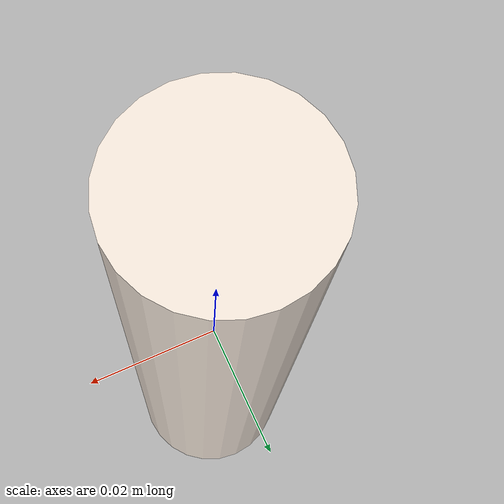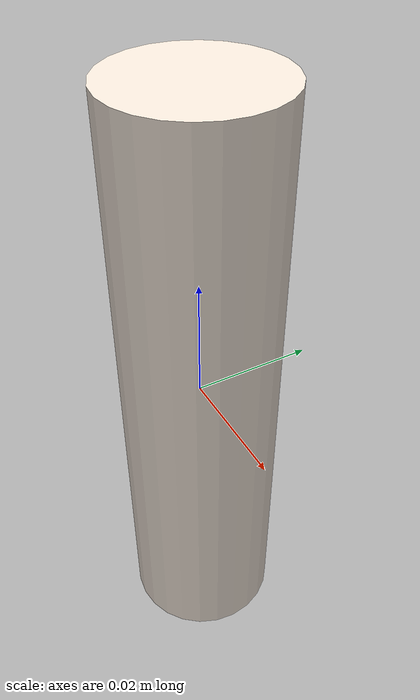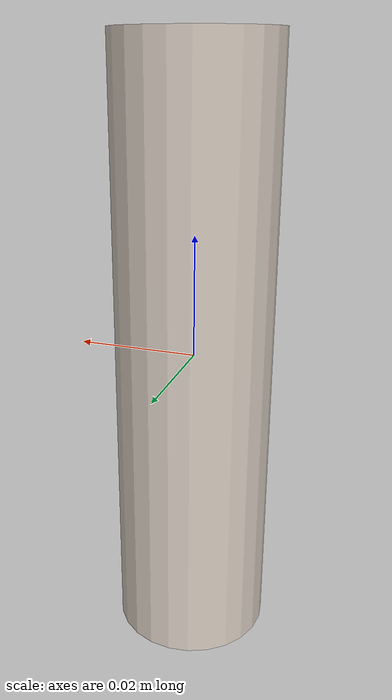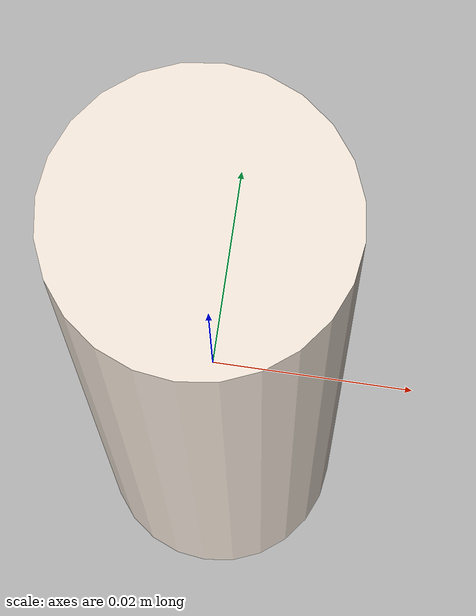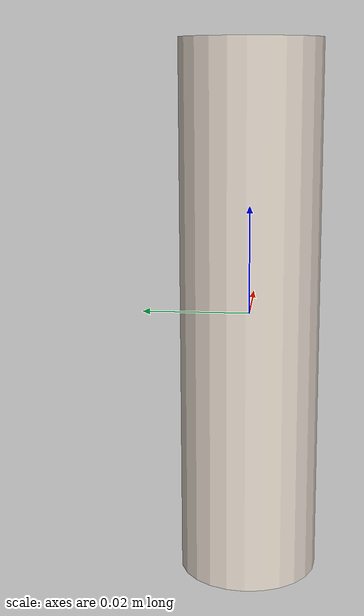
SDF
<?xml version="1.0"?>
<sdf version='1.6'>
<model name='RobotWheelSuspension'>
  <link name="link">
    <inertial>
      <mass>2.0</mass>
      <inertia>
        <ixx>0.00172717</ixx>
        <ixy>0</ixy>
        <ixz>0</ixz>
        <iyy>0.00172717</iyy>
        <iyz>0</iyz>
        <izz>0.012100</izz>
      </inertia>
    </inertial>

    <gravity>1</gravity>

    <collision name="collision">
      <geometry>
        <cylinder>
          <radius>0.013</radius>
          <length>0.10</length>
        </cylinder>
      </geometry>
    </collision>
    <visual name="visual">
      <geometry>
        <cylinder>
          <radius>0.013</radius>
          <length>0.10</length>
        </cylinder>
      </geometry>
      <material>
        <ambient>0.09 0.09 0.09 1</ambient>
        <diffuse>0.95 0.9 0.85 1</diffuse>
        <specular>0.95 0.9 0.85 1</specular>
        <emissive>0.3 0.3 0.3 1</emissive>
      </material>
    </visual>
  </link>
</model>
</sdf>
